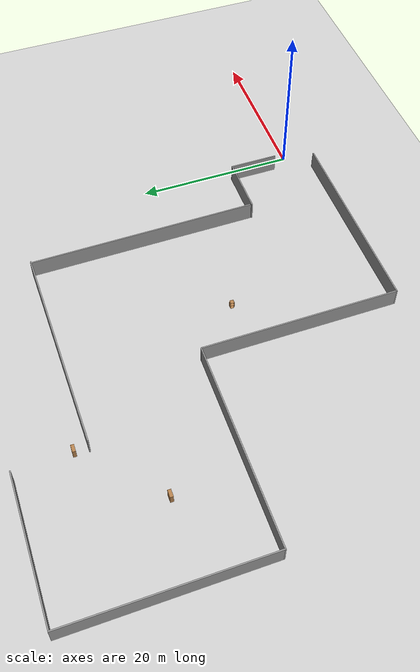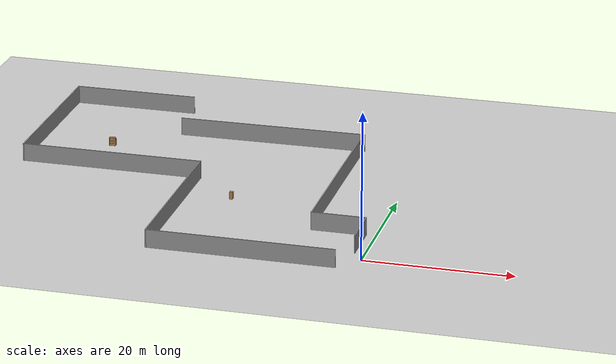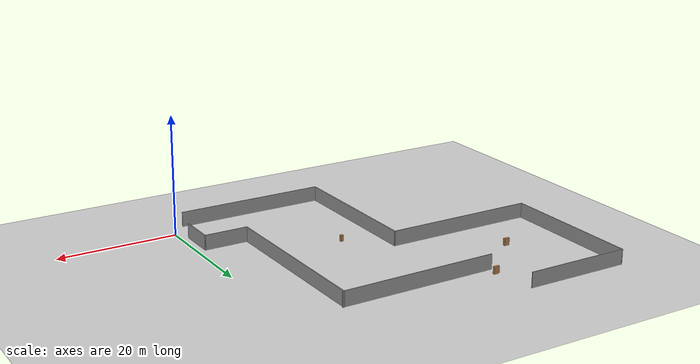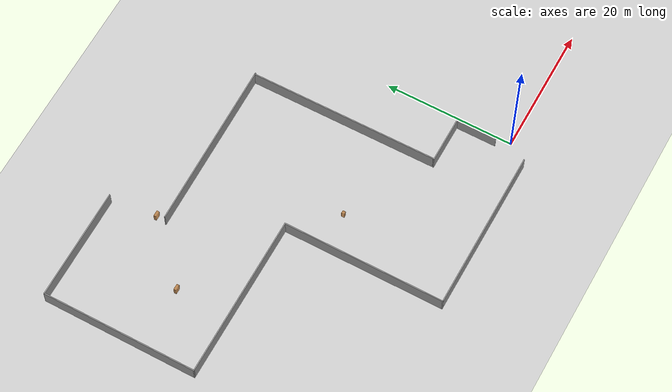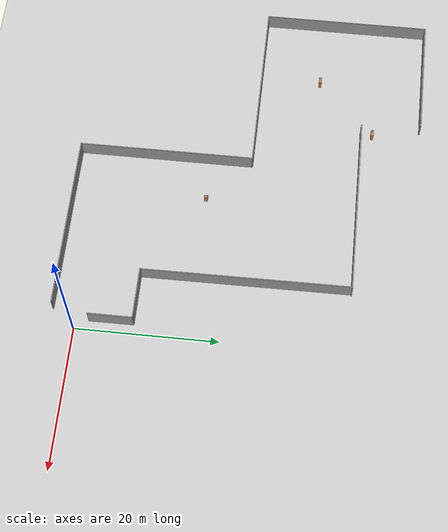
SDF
<sdf version="1.7">
 <world name="default">
  <model name="ground_plane">
   <static>1</static>
   <link name="link">
    <collision name="collision">
     <geometry><plane><normal>0 0 1</normal><size>100 100</size></plane></geometry>
     <surface>
      <contact><collide_bitmask>65535</collide_bitmask></contact>
      <friction><ode><mu>100</mu><mu2>50</mu2></ode></friction>
     </surface>
    </collision>
    <visual name="visual">
     <cast_shadows>0</cast_shadows>
     <geometry><plane><normal>0 0 1</normal><size>100 100</size></plane></geometry>
     <material>
      <script><uri>file://media/materials/scripts/gazebo.material</uri><name>Gazebo/Grey</name></script>
     </material>
    </visual>
   </link>
  </model>
  <model name="Untitled_0">
   <pose>-26.595 21.1677 0 0 -0 0</pose>
   <link name="Wall_25">
    <collision name="Wall_25_Collision">
     <geometry><box><size>6.25 0.15 2.5</size></box></geometry>
     <pose>0 0 1.25 0 -0 0</pose>
    </collision>
    <visual name="Wall_25_Visual">
     <pose>0 0 1.25 0 -0 0</pose>
     <geometry><box><size>6.25 0.15 2.5</size></box></geometry>
     <material>
      <script><uri>file://media/materials/scripts/gazebo.material</uri><name>Gazebo/Grey</name></script>
      <ambient>1 1 1 1</ambient>
     </material>
     <meta><layer>0</layer></meta>
    </visual>
    <pose>25.2329 -16.1296 0 0 -0 1.5708</pose>
   </link>
   <link name="Wall_26">
    <collision name="Wall_26_Collision">
     <geometry><box><size>7.5 0.15 2.5</size></box></geometry>
     <pose>0 0 1.25 0 -0 0</pose>
    </collision>
    <visual name="Wall_26_Visual">
     <pose>0 0 1.25 0 -0 0</pose>
     <geometry><box><size>7.5 0.15 2.5</size></box></geometry>
     <material>
      <script><uri>file://media/materials/scripts/gazebo.material</uri><name>Gazebo/Grey</name></script>
      <ambient>1 1 1 1</ambient>
     </material>
     <meta><layer>0</layer></meta>
    </visual>
    <pose>21.5579 -13.0796 0 0 -0 3.14159</pose>
   </link>
   <link name="Wall_28">
    <collision name="Wall_28_Collision">
     <geometry><box><size>29.0986 0.15 2.5</size></box></geometry>
     <pose>0 0 1.25 0 -0 0</pose>
    </collision>
    <visual name="Wall_28_Visual">
     <pose>0 0 1.25 0 -0 0</pose>
     <geometry><box><size>29.0986 0.15 2.5</size></box></geometry>
     <material>
      <script><uri>file://media/materials/scripts/gazebo.material</uri><name>Gazebo/Grey</name></script>
      <ambient>1 1 1 1</ambient>
     </material>
     <meta><layer>0</layer></meta>
    </visual>
    <pose>17.8515 1.6241 0 0 -0 1.57622</pose>
   </link>
   <link name="Wall_29">
    <collision name="Wall_29_Collision">
     <geometry><box><size>26.4247 0.15 2.5</size></box></geometry>
     <pose>0 0 1.25 0 -0 0</pose>
    </collision>
    <visual name="Wall_29_Visual">
     <pose>0 0 1.25 0 -0 0</pose>
     <geometry><box><size>26.4247 0.15 2.5</size></box></geometry>
     <material>
      <script><uri>file://media/materials/scripts/gazebo.material</uri><name>Gazebo/Grey</name></script>
      <ambient>1 1 1 1</ambient>
     </material>
     <meta><layer>0</layer></meta>
    </visual>
    <pose>4.79359 15.9413 0 0 -0 -3.12965</pose>
   </link>
   <link name="Wall_31">
    <collision name="Wall_31_Collision">
     <geometry><box><size>25.25 0.15 2.5</size></box></geometry>
     <pose>0 0 1.25 0 -0 0</pose>
    </collision>
    <visual name="Wall_31_Visual">
     <pose>0 0 1.25 0 -0 0</pose>
     <geometry><box><size>25.25 0.15 2.5</size></box></geometry>
     <material>
      <script><uri>file://media/materials/scripts/gazebo.material</uri><name>Gazebo/Grey</name></script>
      <ambient>1 1 1 1</ambient>
     </material>
     <meta><layer>0</layer></meta>
    </visual>
    <pose>11.38 -24.35 0 0 -0 0</pose>
   </link>
   <link name="Wall_33">
    <collision name="Wall_33_Collision">
     <geometry><box><size>25 0.15 2.5</size></box></geometry>
     <pose>0 0 1.25 0 -0 0</pose>
    </collision>
    <visual name="Wall_33_Visual">
     <pose>0 0 1.25 0 -0 0</pose>
     <geometry><box><size>25 0.15 2.5</size></box></geometry>
     <material>
      <script><uri>file://media/materials/scripts/gazebo.material</uri><name>Gazebo/Grey</name></script>
      <ambient>1 1 1 1</ambient>
     </material>
     <meta><layer>0</layer></meta>
    </visual>
    <pose>-1.17 -11.925 0 0 -0 1.5708</pose>
   </link>
   <link name="Wall_34">
    <collision name="Wall_34_Collision">
     <geometry><box><size>25.5 0.15 2.5</size></box></geometry>
     <pose>0 0 1.25 0 -0 0</pose>
    </collision>
    <visual name="Wall_34_Visual">
     <pose>0 0 1.25 0 -0 0</pose>
     <geometry><box><size>25.5 0.15 2.5</size></box></geometry>
     <material>
      <script><uri>file://media/materials/scripts/gazebo.material</uri><name>Gazebo/Grey</name></script>
      <ambient>1 1 1 1</ambient>
     </material>
     <meta><layer>0</layer></meta>
    </visual>
    <pose>-13.845 0.499999 0 0 -0 3.14159</pose>
   </link>
   <link name="Wall_35">
    <collision name="Wall_35_Collision">
     <geometry><box><size>24 0.15 2.5</size></box></geometry>
     <pose>0 0 1.25 0 -0 0</pose>
    </collision>
    <visual name="Wall_35_Visual">
     <pose>0 0 1.25 0 -0 0</pose>
     <geometry><box><size>24 0.15 2.5</size></box></geometry>
     <material>
      <script><uri>file://media/materials/scripts/gazebo.material</uri><name>Gazebo/Grey</name></script>
      <ambient>1 1 1 1</ambient>
     </material>
     <meta><layer>0</layer></meta>
    </visual>
    <pose>-26.52 12.425 0 0 -0 1.5708</pose>
   </link>
   <link name="Wall_36">
    <collision name="Wall_36_Collision">
     <geometry><box><size>17.5 0.15 2.5</size></box></geometry>
     <pose>0 0 1.25 0 -0 0</pose>
    </collision>
    <visual name="Wall_36_Visual">
     <pose>0 0 1.25 0 -0 0</pose>
     <geometry><box><size>17.5 0.15 2.5</size></box></geometry>
     <material>
      <script><uri>file://media/materials/scripts/gazebo.material</uri><name>Gazebo/Grey</name></script>
      <ambient>1 1 1 1</ambient>
     </material>
     <meta><layer>0</layer></meta>
    </visual>
    <pose>-17.845 24.35 0 0 -0 0</pose>
   </link>
   <static>1</static>
  </model>
  <model name="cabinet_0">
   <static>1</static>
   <link name="cabinet_bottom_plate">
    <inertial>
     <pose>0 0 -1 0 -0 0</pose>
     <inertia><ixx>2.05</ixx><ixy>0</ixy><ixz>0</ixz><iyy>2.05</iyy><iyz>0</iyz><izz>2.05</izz></inertia>
     <mass>25</mass>
    </inertial>
    <collision name="cabinet_bottom_plate_geom">
     <pose>0 0 0.01 0 -0 0</pose>
     <geometry><box><size>0.45 0.45 0.02</size></box></geometry>
    </collision>
    <visual name="cabinet_bottom_plate_geom_visual">
     <pose>0 0 0.01 0 -0 0</pose>
     <geometry><box><size>0.45 0.45 0.02</size></box></geometry>
     <material>
      <script><uri>file://media/materials/scripts/gazebo.material</uri><name>Gazebo/Wood</name></script>
     </material>
    </visual>
    <collision name="cabinet_bottom_plate_geom_cabinet_back_plate">
     <pose>0.235 0 0.51 0 -0 0</pose>
     <geometry><box><size>0.02 0.45 1.02</size></box></geometry>
    </collision>
    <visual name="cabinet_bottom_plate_geom_cabinet_back_plate_visual">
     <pose>0.235 0 0.51 0 -0 0</pose>
     <geometry><box><size>0.02 0.45 1.02</size></box></geometry>
     <material>
      <script><uri>file://media/materials/scripts/gazebo.material</uri><name>Gazebo/Wood</name></script>
     </material>
    </visual>
    <collision name="cabinet_bottom_plate_geom_cabinet_left_plate">
     <pose>0 0.235 0.51 0 -0 0</pose>
     <geometry><box><size>0.45 0.02 1.02</size></box></geometry>
    </collision>
    <visual name="cabinet_bottom_plate_geom_cabinet_left_plate_visual">
     <pose>0 0.235 0.51 0 -0 0</pose>
     <geometry><box><size>0.45 0.02 1.02</size></box></geometry>
     <material>
      <script><uri>file://media/materials/scripts/gazebo.material</uri><name>Gazebo/Wood</name></script>
     </material>
    </visual>
    <collision name="cabinet_bottom_plate_geom_cabinet_middle_plate">
     <pose>0 0 0.51 0 -0 0</pose>
     <geometry><box><size>0.45 0.45 0.02</size></box></geometry>
    </collision>
    <visual name="cabinet_bottom_plate_geom_cabinet_middle_plate_visual">
     <pose>0 0 0.51 0 -0 0</pose>
     <geometry><box><size>0.45 0.45 0.02</size></box></geometry>
     <material>
      <script><uri>file://media/materials/scripts/gazebo.material</uri><name>Gazebo/Wood</name></script>
     </material>
    </visual>
    <collision name="cabinet_bottom_plate_geom_cabinet_right_plate">
     <pose>0 -0.235 0.51 0 -0 0</pose>
     <geometry><box><size>0.45 0.02 1.02</size></box></geometry>
    </collision>
    <visual name="cabinet_bottom_plate_geom_cabinet_right_plate_visual">
     <pose>0 -0.235 0.51 0 -0 0</pose>
     <geometry><box><size>0.45 0.02 1.02</size></box></geometry>
     <material>
      <script><uri>file://media/materials/scripts/gazebo.material</uri><name>Gazebo/Wood</name></script>
     </material>
    </visual>
    <collision name="cabinet_bottom_plate_geom_cabinet_top_plate">
     <pose>0 0 1.01 0 -0 0</pose>
     <geometry><box><size>0.45 0.45 0.02</size></box></geometry>
    </collision>
    <visual name="cabinet_bottom_plate_geom_cabinet_top_plate_visual">
     <pose>0 0 1.01 0 -0 0</pose>
     <geometry><box><size>0.45 0.45 0.02</size></box></geometry>
     <material>
      <script><uri>file://media/materials/scripts/gazebo.material</uri><name>Gazebo/Wood</name></script>
     </material>
    </visual>
   </link>
   <pose>-21.6733 15.6358 0 0 -0 0</pose>
  </model>
  <model name="bookshelf_0">
   <static>1</static>
   <link name="link">
    <inertial><mass>1</mass></inertial>
    <collision name="back">
     <pose>0 0.005 0.6 0 -0 0</pose>
     <geometry><box><size>0.9 0.01 1.2</size></box></geometry>
    </collision>
    <visual name="visual1">
     <pose>0 0.005 0.6 0 -0 0</pose>
     <geometry><box><size>0.9 0.01 1.2</size></box></geometry>
     <material>
      <script><uri>file://media/materials/scripts/gazebo.material</uri><name>Gazebo/Wood</name></script>
     </material>
    </visual>
    <collision name="left_side">
     <pose>0.45 -0.195 0.6 0 -0 0</pose>
     <geometry><box><size>0.02 0.4 1.2</size></box></geometry>
    </collision>
    <visual name="visual2">
     <pose>0.45 -0.195 0.6 0 -0 0</pose>
     <geometry><box><size>0.02 0.4 1.2</size></box></geometry>
     <material>
      <script><uri>file://media/materials/scripts/gazebo.material</uri><name>Gazebo/Wood</name></script>
     </material>
    </visual>
    <collision name="right_side">
     <pose>-0.45 -0.195 0.6 0 -0 0</pose>
     <geometry><box><size>0.02 0.4 1.2</size></box></geometry>
    </collision>
    <visual name="visual3">
     <pose>-0.45 -0.195 0.6 0 -0 0</pose>
     <geometry><box><size>0.02 0.4 1.2</size></box></geometry>
     <material>
      <script><uri>file://media/materials/scripts/gazebo.material</uri><name>Gazebo/Wood</name></script>
     </material>
    </visual>
    <collision name="bottom">
     <pose>0 -0.195 0.03 0 -0 0</pose>
     <geometry><box><size>0.88 0.4 0.06</size></box></geometry>
    </collision>
    <visual name="visual4">
     <pose>0 -0.195 0.03 0 -0 0</pose>
     <geometry><box><size>0.88 0.4 0.06</size></box></geometry>
     <material>
      <script><uri>file://media/materials/scripts/gazebo.material</uri><name>Gazebo/Wood</name></script>
     </material>
    </visual>
    <collision name="top">
     <pose>0 -0.195 1.19 0 -0 0</pose>
     <geometry><box><size>0.88 0.4 0.02</size></box></geometry>
    </collision>
    <visual name="visual5">
     <pose>0 -0.195 1.19 0 -0 0</pose>
     <geometry><box><size>0.88 0.4 0.02</size></box></geometry>
     <material>
      <script><uri>file://media/materials/scripts/gazebo.material</uri><name>Gazebo/Wood</name></script>
     </material>
    </visual>
    <collision name="low_shelf">
     <pose>0 -0.195 0.43 0 -0 0</pose>
     <geometry><box><size>0.88 0.4 0.02</size></box></geometry>
    </collision>
    <visual name="visual6">
     <pose>0 -0.195 0.43 0 -0 0</pose>
     <geometry><box><size>0.88 0.4 0.02</size></box></geometry>
     <material>
      <script><uri>file://media/materials/scripts/gazebo.material</uri><name>Gazebo/Wood</name></script>
     </material>
    </visual>
    <collision name="high_shelf">
     <pose>0 -0.195 0.8 0 -0 0</pose>
     <geometry><box><size>0.88 0.4 0.02</size></box></geometry>
    </collision>
    <visual name="visual7">
     <pose>0 -0.195 0.8 0 -0 0</pose>
     <geometry><box><size>0.88 0.4 0.02</size></box></geometry>
     <material>
      <script><uri>file://media/materials/scripts/gazebo.material</uri><name>Gazebo/Wood</name></script>
     </material>
    </visual>
   </link>
   <pose>-43.0877 30.5662 0 0 -0 0</pose>
  </model>
  <model name="bookshelf_1">
   <static>1</static>
   <link name="link">
    <inertial><mass>1</mass></inertial>
    <collision name="back">
     <pose>0 0.005 0.6 0 -0 0</pose>
     <geometry><box><size>0.9 0.01 1.2</size></box></geometry>
    </collision>
    <visual name="visual1">
     <pose>0 0.005 0.6 0 -0 0</pose>
     <geometry><box><size>0.9 0.01 1.2</size></box></geometry>
     <material>
      <script><uri>file://media/materials/scripts/gazebo.material</uri><name>Gazebo/Wood</name></script>
     </material>
    </visual>
    <collision name="left_side">
     <pose>0.45 -0.195 0.6 0 -0 0</pose>
     <geometry><box><size>0.02 0.4 1.2</size></box></geometry>
    </collision>
    <visual name="visual2">
     <pose>0.45 -0.195 0.6 0 -0 0</pose>
     <geometry><box><size>0.02 0.4 1.2</size></box></geometry>
     <material>
      <script><uri>file://media/materials/scripts/gazebo.material</uri><name>Gazebo/Wood</name></script>
     </material>
    </visual>
    <collision name="right_side">
     <pose>-0.45 -0.195 0.6 0 -0 0</pose>
     <geometry><box><size>0.02 0.4 1.2</size></box></geometry>
    </collision>
    <visual name="visual3">
     <pose>-0.45 -0.195 0.6 0 -0 0</pose>
     <geometry><box><size>0.02 0.4 1.2</size></box></geometry>
     <material>
      <script><uri>file://media/materials/scripts/gazebo.material</uri><name>Gazebo/Wood</name></script>
     </material>
    </visual>
    <collision name="bottom">
     <pose>0 -0.195 0.03 0 -0 0</pose>
     <geometry><box><size>0.88 0.4 0.06</size></box></geometry>
    </collision>
    <visual name="visual4">
     <pose>0 -0.195 0.03 0 -0 0</pose>
     <geometry><box><size>0.88 0.4 0.06</size></box></geometry>
     <material>
      <script><uri>file://media/materials/scripts/gazebo.material</uri><name>Gazebo/Wood</name></script>
     </material>
    </visual>
    <collision name="top">
     <pose>0 -0.195 1.19 0 -0 0</pose>
     <geometry><box><size>0.88 0.4 0.02</size></box></geometry>
    </collision>
    <visual name="visual5">
     <pose>0 -0.195 1.19 0 -0 0</pose>
     <geometry><box><size>0.88 0.4 0.02</size></box></geometry>
     <material>
      <script><uri>file://media/materials/scripts/gazebo.material</uri><name>Gazebo/Wood</name></script>
     </material>
    </visual>
    <collision name="low_shelf">
     <pose>0 -0.195 0.43 0 -0 0</pose>
     <geometry><box><size>0.88 0.4 0.02</size></box></geometry>
    </collision>
    <visual name="visual6">
     <pose>0 -0.195 0.43 0 -0 0</pose>
     <geometry><box><size>0.88 0.4 0.02</size></box></geometry>
     <material>
      <script><uri>file://media/materials/scripts/gazebo.material</uri><name>Gazebo/Wood</name></script>
     </material>
    </visual>
    <collision name="high_shelf">
     <pose>0 -0.195 0.8 0 -0 0</pose>
     <geometry><box><size>0.88 0.4 0.02</size></box></geometry>
    </collision>
    <visual name="visual7">
     <pose>0 -0.195 0.8 0 -0 0</pose>
     <geometry><box><size>0.88 0.4 0.02</size></box></geometry>
     <material>
      <script><uri>file://media/materials/scripts/gazebo.material</uri><name>Gazebo/Wood</name></script>
     </material>
    </visual>
   </link>
   <pose>-34.6059 38.8169 0 0 -0 0</pose>
  </model>
 </world>
</sdf>
